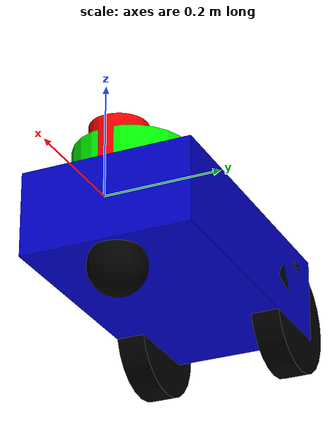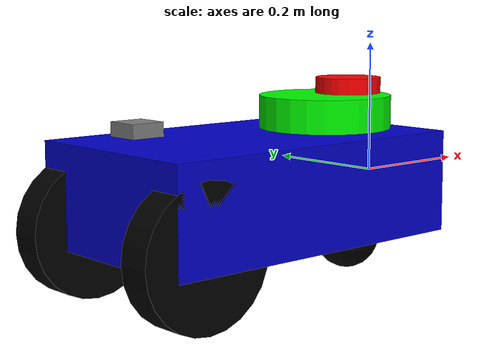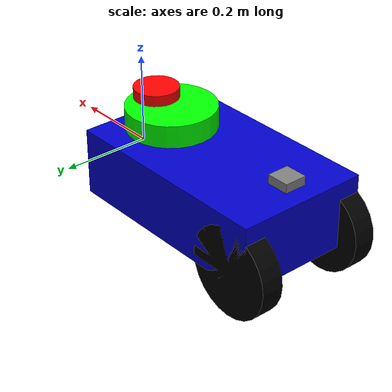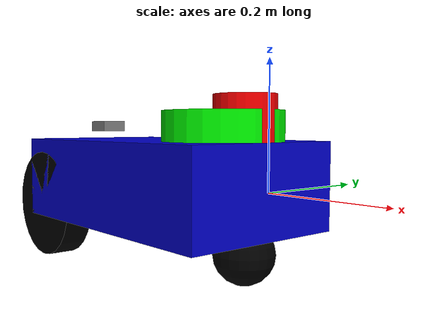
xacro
<?xml version="1.0"?>
<!-- IMPORTANT: The name is kept as "tracked_robot" to match your launch files. -->
<robot xmlns:xacro="http://www.ros.org/wiki/xacro" name="tracked_robot">

    <!-- #################### PROPERTIES #################### -->
    <xacro:property name="PI" value="3.1415926535897931"/>

    <!-- Chassis Properties -->
    <xacro:property name="chassis_length" value="0.5"/>
    <xacro:property name="chassis_width" value="0.3"/>
    <xacro:property name="chassis_height" value="0.15"/>
    <xacro:property name="chassis_mass" value="5.0"/>

    <!-- Wheel Properties -->
    <xacro:property name="wheel_radius" value="0.1"/>
    <xacro:property name="wheel_width" value="0.05"/>
    <xacro:property name="wheel_mass" value="0.5"/>
    <xacro:property name="wheel_separation" value="0.25"/>
    <xacro:property name="wheel_x_offset" value="-0.2"/>
    <xacro:property name="wheel_z_offset" value="-0.05"/>

    <!-- Caster Properties -->
    <xacro:property name="caster_radius" value="0.05"/>
    <xacro:property name="caster_mass" value="0.1"/>
    <xacro:property name="caster_x_offset" value="0.2"/>
    <xacro:property name="caster_z_offset" value="-0.1"/>

    <!-- 2D Lidar Properties (Original) -->
    <xacro:property name="lidar_2d_radius" value="0.1"/>
    <xacro:property name="lidar_2d_length" value="0.05"/>
    <xacro:property name="lidar_2d_mass" value="0.2"/>
    <xacro:property name="lidar_z_offset" value="0.1"/>

    <!-- SICK multiScan136 3D Lidar Properties (New) -->
    <xacro:property name="lidar_3d_radius" value="0.05015"/> <!-- 100.3mm diameter / 2 -->
    <xacro:property name="lidar_3d_length" value="0.0985"/>  <!-- 98.5mm height -->
    <xacro:property name="lidar_3d_mass" value="0.7"/>       <!-- 0.7 kg -->

    <!-- RGB Camera Properties -->
    <xacro:property name="camera_width" value="0.05"/>
    <xacro:property name="camera_height" value="0.05"/>
    <xacro:property name="camera_depth" value="0.02"/>
    <xacro:property name="camera_mass" value="0.1"/>
    <xacro:property name="camera_x_offset" value="0.2"/>
    <xacro:property name="camera_y_offset" value="0"/>
    <xacro:property name="camera_z_offset" value="0.1"/>

    <!-- #################### ROBOT LINKS AND JOINTS #################### -->
    <!-- NEW: This is the new root link at the front edge of the robot. -->
<!-- It has no visual or collision properties because it's just a reference frame. -->
    <link name="base_footprint"/>
    <joint name="base_link_joint" type="fixed">
    <parent link="base_footprint"/>
    <child link="base_link"/>
    <origin xyz="-${chassis_length / 2.0} 0 0" rpy="0 0 0"/>
    </joint>

    <link name="base_link">
        <visual>
            <geometry><box size="${chassis_length} ${chassis_width} ${chassis_height}"/></geometry>
            <material name="blue"><color rgba="0 0 0.8 1"/></material>
        </visual>
        <collision>
            <geometry><box size="${chassis_length} ${chassis_width} ${chassis_height}"/></geometry>
        </collision>
        <inertial>
            <mass value="${chassis_mass}"/>
            <inertia ixx="0.1" ixy="0" ixz="0" iyy="0.1" iyz="0" izz="0.1"/>
        </inertial>
    </link>

    <xacro:macro name="wheel" params="side side_y_reflect">
        <link name="${side}_wheel_link">
            <visual>
                <origin rpy="${PI/2} 0 0" xyz="0 0 0"/>
                <geometry><cylinder radius="${wheel_radius}" length="${wheel_width}"/></geometry>
                <material name="black"><color rgba="0 0 0 1"/></material>
            </visual>
            <collision>
                <origin rpy="${PI/2} 0 0" xyz="0 0 0"/>
                <geometry><cylinder radius="${wheel_radius}" length="${wheel_width}"/></geometry>
            </collision>
            <inertial>
                <mass value="${wheel_mass}"/>
                <inertia ixx="0.01" ixy="0" ixz="0" iyy="0.01" iyz="0" izz="0.01"/>
            </inertial>
        </link>

        <joint name="${side}_wheel_joint" type="continuous">
            <parent link="base_link"/>
            <child link="${side}_wheel_link"/>
            <origin rpy="0 0 0" xyz="${wheel_x_offset} ${side_y_reflect * wheel_separation/2} ${wheel_z_offset}"/>
            <axis xyz="0 1 0"/>
        </joint>
    </xacro:macro>

    <xacro:wheel side="left"  side_y_reflect="1"/>
    <xacro:wheel side="right" side_y_reflect="-1"/>

    <link name="caster_wheel_link">
        <visual><geometry><sphere radius="${caster_radius}"/></geometry><material name="black"><color rgba="0 0 0 1"/></material></visual>
        <collision><geometry><sphere radius="${caster_radius}"/></geometry></collision>
        <inertial>
            <mass value="${caster_mass}"/>
            <inertia ixx="0.01" ixy="0" ixz="0" iyy="0.01" iyz="0" izz="0.01"/>
        </inertial>
    </link>

    <joint name="caster_wheel_joint" type="fixed"><parent link="base_link"/><child link="caster_wheel_link"/><origin xyz="${caster_x_offset} 0 ${caster_z_offset}"/></joint>

    <!-- 2D LiDAR Link (Original, Renamed) -->
    <link name="lidar_2d_link">
        <visual><geometry><cylinder length="${lidar_2d_length}" radius="${lidar_2d_radius}"/></geometry><material name="green"><color rgba="0 1 0 1"/></material></visual>
        <!-- COLLISION REMOVED to prevent interference with the co-located 3D LiDAR -->
        <inertial>
            <mass value="${lidar_2d_mass}"/>
            <inertia ixx="0.001" ixy="0" ixz="0" iyy="0.001" iyz="0" izz="0.001"/>
        </inertial>
    </link>

    <joint name="lidar_2d_joint" type="fixed"><parent link="base_link"/><child link="lidar_2d_link"/><origin xyz="0.15 0 ${lidar_z_offset}"/></joint>

    <!-- 3D LiDAR Link (New) -->
    <link name="lidar_3d_link">
        <visual><geometry><cylinder length="${lidar_3d_length}" radius="${lidar_3d_radius}"/></geometry><material name="red"><color rgba="1 0 0 1"/></material></visual>
        <!-- COLLISION REMOVED to prevent interference with the co-located 2D LiDAR -->
        <inertial>
            <mass value="${lidar_3d_mass}"/>
            <inertia ixx="0.001" ixy="0" ixz="0" iyy="0.001" iyz="0" izz="0.001"/>
        </inertial>
    </link>

    <joint name="lidar_3d_joint" type="fixed"><parent link="base_link"/><child link="lidar_3d_link"/><origin xyz="0.20 0 ${lidar_z_offset}"/></joint>

    <!-- RGB Camera Link -->
    <link name="camera_link">
        <visual>
            <geometry><box size="${camera_width} ${camera_height} ${camera_depth}"/></geometry>
            <material name="black"><color rgba="0 0 0 1"/></material>
        </visual>
        <inertial>
            <mass value="${camera_mass}"/>
            <inertia ixx="1e-6" ixy="0" ixz="0" iyy="1e-6" iyz="0" izz="1e-6"/>
        </inertial>
    </link>

    <joint name="camera_joint" type="fixed">
        <parent link="base_link"/>
        <child link="camera_link"/>
        <origin xyz="${camera_x_offset} ${camera_y_offset} ${camera_z_offset}" rpy="0 0 0"/>
    </joint>

        <!-- ########### NEW: REAR CAMERA ########### -->
    <!-- RGB Camera Link (Rear) -->
    <link name="camera_rear_link">
        <visual>
            <geometry><box size="${camera_width} ${camera_height} ${camera_depth}"/></geometry>
            <material name="grey"><color rgba="0.5 0.5 0.5 1"/></material>
        </visual>
        <inertial>
            <mass value="${camera_mass}"/>
            <inertia ixx="1e-6" ixy="0" ixz="0" iyy="1e-6" iyz="0" izz="1e-6"/>
        </inertial>
    </link>
    <joint name="camera_rear_joint" type="fixed">
        <parent link="base_link"/>
        <child link="camera_rear_link"/>
        <!-- Positioned at the back (-x) and rotated 180 deg (PI rad) around Z to face backward -->
        <origin xyz="-0.2 ${camera_y_offset} ${camera_z_offset}" rpy="0 0 ${PI}"/>
    </joint>
    <!-- #################### GAZEBO PLUGINS AND REFERENCES #################### -->

    <gazebo reference="base_link"><material>Gazebo/Blue</material></gazebo>
    <gazebo reference="left_wheel_link"><material>Gazebo/Black</material></gazebo>
    <gazebo reference="right_wheel_link"><material>Gazebo/Black</material></gazebo>
    <gazebo reference="lidar_2d_link"><material>Gazebo/Green</material></gazebo>
    <gazebo reference="lidar_3d_link"><material>Gazebo/Red</material></gazebo> <!-- Material for new 3D LiDAR -->
    <gazebo reference="caster_wheel_link"><material>Gazebo/Black</material><mu1>0.1</mu1><mu2>0.1</mu2></gazebo>

    <gazebo>
        <plugin name="diff_drive" filename="libgazebo_ros_diff_drive.so">
            <ros><remapping>cmd_vel:=cmd_vel</remapping><remapping>odom:=odom</remapping></ros>
            <left_joint>left_wheel_joint</left_joint>
            <right_joint>right_wheel_joint</right_joint>
            <wheel_separation>${wheel_separation}</wheel_separation>
            <wheel_diameter>${2*wheel_radius}</wheel_diameter>
            <max_wheel_torque>20</max_wheel_torque>
            <max_wheel_acceleration>1.0</max_wheel_acceleration>
            <odometry_frame>odom</odometry_frame>
            <robot_base_frame>base_footprint</robot_base_frame>
            <publish_odom>true</publish_odom>
            <publish_odom_tf>true</publish_odom_tf>
        </plugin>
    </gazebo>

    <!-- Gazebo Plugin for 2D LiDAR -->
    <gazebo reference="lidar_2d_link">
        <sensor name="lidar_2d_sensor" type="ray">
            <visualize>false</visualize><update_rate>10</update_rate>
            <ray>
                <scan>
                    <horizontal><samples>360</samples><min_angle>-${PI}</min_angle><max_angle>${PI}</max_angle></horizontal>
                </scan>
                <range><min>0.14</min><max>2.0</max></range>
            </ray>
            <plugin name="lidar_2d_controller" filename="libgazebo_ros_ray_sensor.so">
                <ros><remapping>~/out:=scan</remapping></ros>
                <output_type>sensor_msgs/LaserScan</output_type>
                <frame_name>lidar_2d_link</frame_name>
            </plugin>
        </sensor>
    </gazebo>

    <!-- Gazebo Plugin for SICK multiScan136 3D LiDAR -->
    <gazebo reference="lidar_3d_link">
        <sensor name="lidar_3d_sensor" type="ray">
            <visualize>false</visualize>
            <update_rate>20</update_rate>
            <ray>
                <scan>
                    <horizontal>
                        <samples>720</samples>
                        <resolution>1</resolution>
                        <min_angle>-${1.75}</min_angle>
                        <max_angle>${1.75}</max_angle>
                    </horizontal>
                    <vertical>
                        <samples>14</samples>
                        <resolution>1</resolution>
                        <min_angle>-0.7417</min_angle> <!-- -42.5 degrees -->
                        <max_angle>0.3927</max_angle>  <!-- 22.5 degrees -->
                    </vertical>
                </scan>
                <range>
                    <min>0.05</min>
                    <max>2.0</max>
                    <resolution>0.01</resolution>
                </range>
                <noise>
                    <type>gaussian</type>
                    <mean>0.0</mean>
                    <stddev>0.01</stddev>
                </noise>
            </ray>
            <plugin name="lidar_3d_controller" filename="libgazebo_ros_ray_sensor.so">
                <ros><remapping>~/out:=points</remapping></ros>
                <output_type>sensor_msgs/PointCloud2</output_type>
                <frame_name>lidar_3d_link</frame_name>
            </plugin>
        </sensor>
    </gazebo>

    <gazebo reference="camera_link">
        <material>Gazebo/Black</material>
        <sensor type="depth" name="front_rgbd_camera">
            <update_rate>30.0</update_rate>
            <camera name="head">
                <!-- 130 degrees in radians -->
                <horizontal_fov>2.2689</horizontal_fov>
                <image>
                    <!-- You can adjust the resolution as needed -->
                    <width>1024</width>
                    <height>576</height>
                </image>
                <clip>
                    <!-- Adjust near and far clipping planes for your application -->
                    <near>0.1</near>
                    <far>10.0</far>
                </clip>
            </camera>
            <plugin name="camera_controller" filename="libgazebo_ros_camera.so">
                <ros>
                    <!-- Topics will be namespaced under /tracked_robot/front_rgbd_camera/ -->
                    <namespace>/tracked_robot</namespace>
                    <remapping>image_raw:=rgb/image_raw</remapping>
                    <remapping>camera_info:=rgb/camera_info</remapping>

                    <remapping>depth/camera_info:=depth/camera_info</remapping>
                </ros>

                <!-- A unique camera name to namespace the topics -->
                <camera_name>front_rgbd_camera</camera_name>
                <frame_name>camera_link</frame_name>

                <!-- Set to true to publish the depth image -->
                <publish_depth_image>true</publish_depth_image>
                <depth_image_topic_name>depth/image_raw</depth_image_topic_name>
                <depth_info_topic_name>depth/camera_info</depth_info_topic_name>

                <!-- Set to false to disable the point cloud -->
                <publish_point_cloud>false</publish_point_cloud>

                <!-- Clipping values for the depth data -->
                <point_cloud_cutoff>0.1</point_cloud_cutoff>
                <point_cloud_cutoff_max>10.0</point_cloud_cutoff_max>
            </plugin>
        </sensor>
    </gazebo>
        <!-- ########### NEW: GAZEBO PLUGIN FOR REAR CAMERA ########### -->
    <gazebo reference="camera_rear_link">
        <material>Gazebo/Grey</material>
        <sensor type="camera" name="rgb_camera_rear">
            <update_rate>30.0</update_rate>
            <camera name="rear_head">
                <!-- 100 degrees in radians = 1.7453 -->
                <horizontal_fov>1.7453</horizontal_fov>
                <image>
                    <width>1024</width>
                    <height>576</height>
                    <format>R8G8B8</format>
                </image>
                <clip>
                    <near>0.28</near>
                    <far>16.0</far>
                </clip>
            </camera>
            <plugin name="camera_rear_controller" filename="libgazebo_ros_camera.so">
                <ros>
                    <namespace>/tracked_robot</namespace>
                    <remapping>image_raw:=image_raw</remapping>
                    <remapping>camera_info:=camera_info</remapping>
                </ros>
                <!-- This unique camera_name ensures a unique topic: /tracked_robot/rear_camera/image_raw -->
                <camera_name>rear_camera</camera_name>
                <frame_name>camera_rear_link</frame_name>
                <hack_baseline>0.07</hack_baseline>
            </plugin>
        </sensor>
    </gazebo>
</robot>
